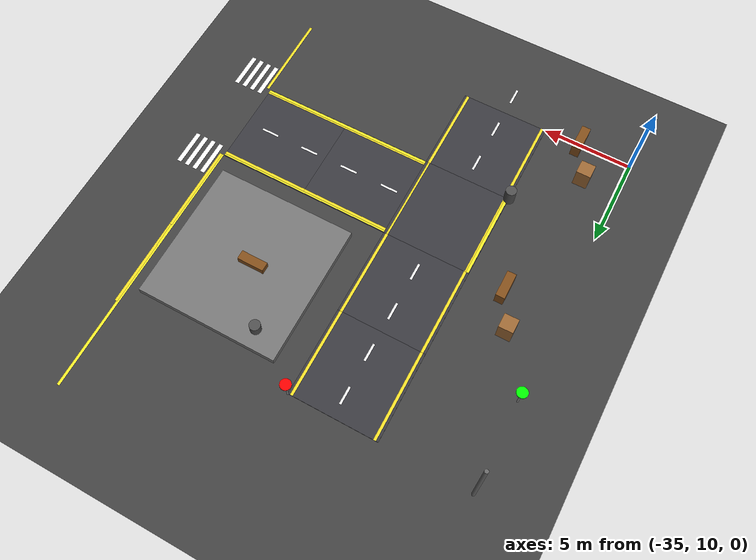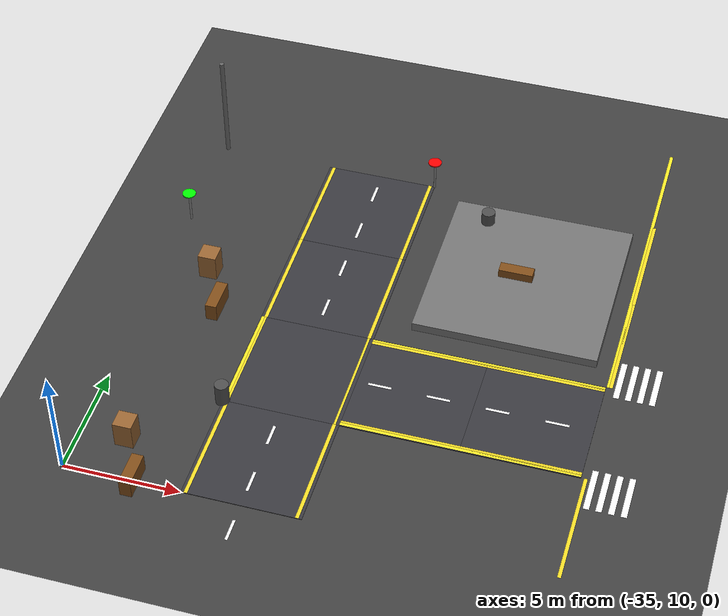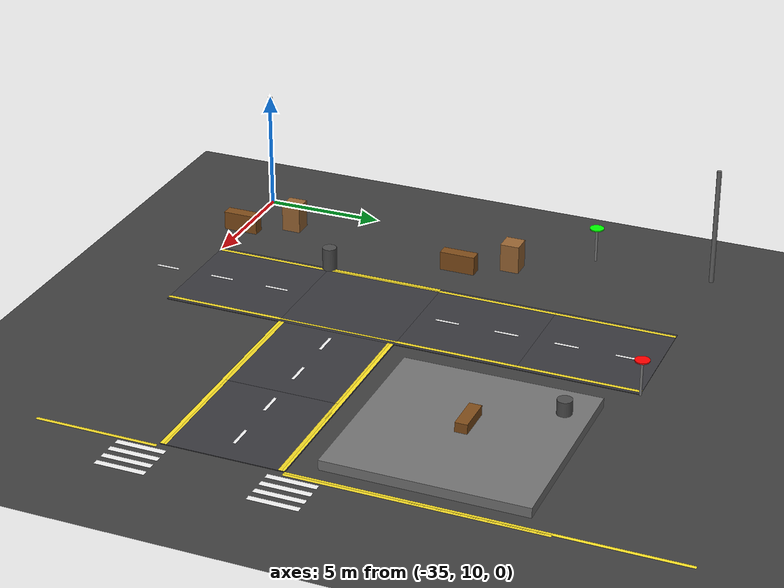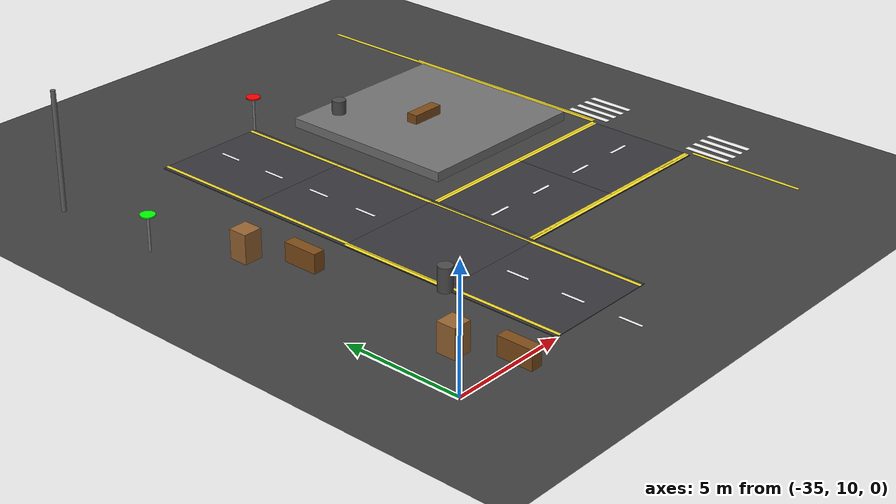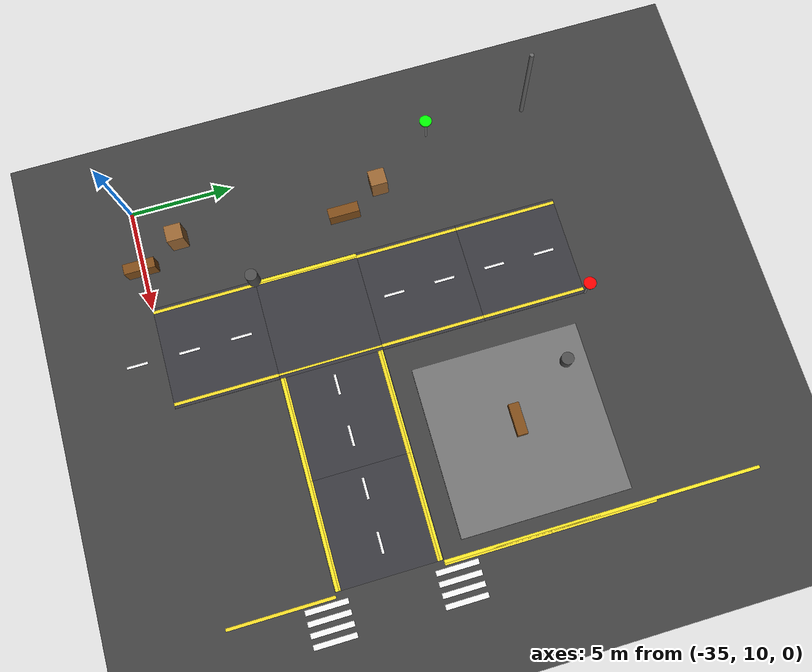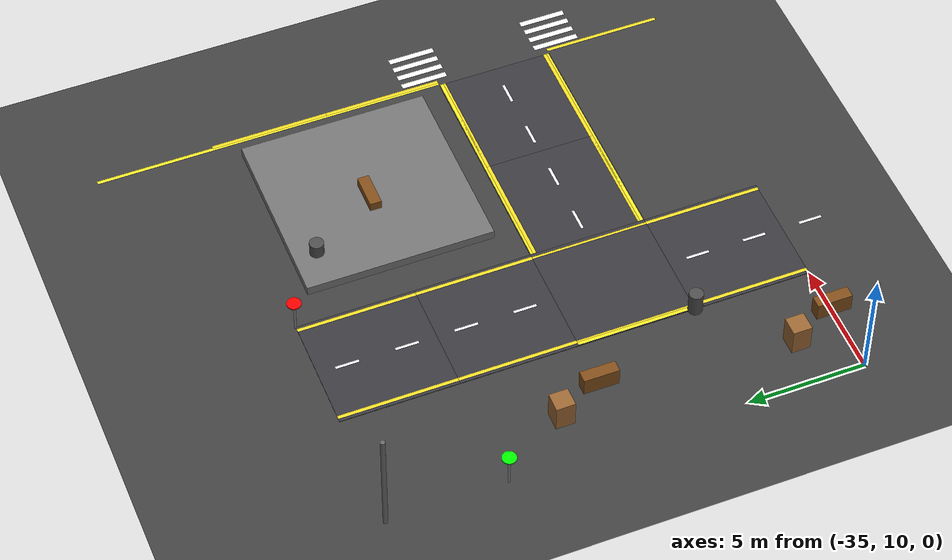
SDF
<sdf version="1.7">
 <world name="compact_city">
  <model name="ground_plane">
   <static>1</static>
   <pose>0 0 0.01 0 -0 0</pose>
   <link name="link">
    <collision name="collision">
     <geometry><plane><normal>0 0 1</normal><size>200 200</size></plane></geometry>
    </collision>
    <visual name="visual">
     <geometry><plane><normal>0 0 1</normal><size>200 200</size></plane></geometry>
     <material>
      <ambient>0.2 0.2 0.2 1</ambient>
      <diffuse>0.25 0.25 0.25 1</diffuse>
      <specular>0.1 0.1 0.1 1</specular>
     </material>
    </visual>
   </link>
  </model>
  <model name="road_tile_13">
   <static>1</static>
   <pose>-27.5 27.5 0.015 0 -0 1.5708</pose>
   <link name="link">
    <collision name="collision"><geometry><box><size>5 5 0.03</size></box></geometry></collision>
    <visual name="visual">
     <geometry><box><size>5 5 0.03</size></box></geometry>
     <material>
      <ambient>0.18 0.18 0.2 1</ambient>
      <diffuse>0.22 0.22 0.24 1</diffuse>
      <specular>0.1 0.1 0.1 1</specular>
     </material>
    </visual>
   </link>
  </model>
  <model name="road_tile_17">
   <static>1</static>
   <pose>-27.5 22.5 0.015 0 -0 1.5708</pose>
   <link name="link">
    <collision name="collision"><geometry><box><size>5 5 0.03</size></box></geometry></collision>
    <visual name="visual">
     <geometry><box><size>5 5 0.03</size></box></geometry>
     <material>
      <ambient>0.18 0.18 0.2 1</ambient>
      <diffuse>0.22 0.22 0.24 1</diffuse>
      <specular>0.1 0.1 0.1 1</specular>
     </material>
    </visual>
   </link>
  </model>
  <model name="road_tile_21">
   <static>1</static>
   <pose>-27.5 17.5 0.015 0 -0 0</pose>
   <link name="link">
    <collision name="collision"><geometry><box><size>5 5 0.03</size></box></geometry></collision>
    <visual name="visual">
     <geometry><box><size>5 5 0.03</size></box></geometry>
     <material>
      <ambient>0.18 0.18 0.2 1</ambient>
      <diffuse>0.22 0.22 0.24 1</diffuse>
      <specular>0.1 0.1 0.1 1</specular>
     </material>
    </visual>
   </link>
  </model>
  <model name="road_tile_22">
   <static>1</static>
   <pose>-22.5 17.5 0.015 0 -0 0</pose>
   <link name="link">
    <collision name="collision"><geometry><box><size>5 5 0.03</size></box></geometry></collision>
    <visual name="visual">
     <geometry><box><size>5 5 0.03</size></box></geometry>
     <material>
      <ambient>0.18 0.18 0.2 1</ambient>
      <diffuse>0.22 0.22 0.24 1</diffuse>
      <specular>0.1 0.1 0.1 1</specular>
     </material>
    </visual>
   </link>
  </model>
  <model name="road_tile_23">
   <static>1</static>
   <pose>-17.5 17.5 0.015 0 -0 0</pose>
   <link name="link">
    <collision name="collision"><geometry><box><size>5 5 0.03</size></box></geometry></collision>
    <visual name="visual">
     <geometry><box><size>5 5 0.03</size></box></geometry>
     <material>
      <ambient>0.18 0.18 0.2 1</ambient>
      <diffuse>0.22 0.22 0.24 1</diffuse>
      <specular>0.1 0.1 0.1 1</specular>
     </material>
    </visual>
   </link>
  </model>
  <model name="road_tile_33">
   <static>1</static>
   <pose>-27.5 12.5 0.015 0 -0 1.5708</pose>
   <link name="link">
    <collision name="collision"><geometry><box><size>5 5 0.03</size></box></geometry></collision>
    <visual name="visual">
     <geometry><box><size>5 5 0.03</size></box></geometry>
     <material>
      <ambient>0.18 0.18 0.2 1</ambient>
      <diffuse>0.22 0.22 0.24 1</diffuse>
      <specular>0.1 0.1 0.1 1</specular>
     </material>
    </visual>
   </link>
  </model>
  <model name="sidewalk_area_top_left">
   <static>1</static>
   <pose>-19.6112 25 0.2 0 -0 0</pose>
   <link name="link">
    <collision name="collision"><geometry><box><size>8 8 0.4</size></box></geometry></collision>
    <visual name="visual">
     <geometry><box><size>8 8 0.4</size></box></geometry>
     <material>
      <ambient>0.4 0.4 0.4 1</ambient>
      <diffuse>0.45 0.45 0.45 1</diffuse>
      <specular>0.2 0.2 0.2 1</specular>
     </material>
    </visual>
   </link>
  </model>
  <model name="el_141">
   <static>1</static>
   <pose>-29.8 12.5 0.038 0 -0 1.5708</pose>
   <link name="link">
    <visual name="v">
     <geometry><box><size>5 0.15 0.002</size></box></geometry>
     <material><ambient>0.9 0.8 0.1 1</ambient><diffuse>0.95 0.85 0.15 1</diffuse></material>
    </visual>
   </link>
  </model>
  <model name="el_142">
   <static>1</static>
   <pose>-25.2 12.5 0.038 0 -0 1.5708</pose>
   <link name="link">
    <visual name="v">
     <geometry><box><size>5 0.15 0.002</size></box></geometry>
     <material><ambient>0.9 0.8 0.1 1</ambient><diffuse>0.95 0.85 0.15 1</diffuse></material>
    </visual>
   </link>
  </model>
  <model name="el_143">
   <static>1</static>
   <pose>-29.8 22.5 0.038 0 -0 1.5708</pose>
   <link name="link">
    <visual name="v">
     <geometry><box><size>5 0.15 0.002</size></box></geometry>
     <material><ambient>0.9 0.8 0.1 1</ambient><diffuse>0.95 0.85 0.15 1</diffuse></material>
    </visual>
   </link>
  </model>
  <model name="el_144">
   <static>1</static>
   <pose>-25.2 22.5 0.038 0 -0 1.5708</pose>
   <link name="link">
    <visual name="v">
     <geometry><box><size>5 0.15 0.002</size></box></geometry>
     <material><ambient>0.9 0.8 0.1 1</ambient><diffuse>0.95 0.85 0.15 1</diffuse></material>
    </visual>
   </link>
  </model>
  <model name="el_145">
   <static>1</static>
   <pose>-29.8 27.5 0.038 0 -0 1.5708</pose>
   <link name="link">
    <visual name="v">
     <geometry><box><size>5 0.15 0.002</size></box></geometry>
     <material><ambient>0.9 0.8 0.1 1</ambient><diffuse>0.95 0.85 0.15 1</diffuse></material>
    </visual>
   </link>
  </model>
  <model name="el_146">
   <static>1</static>
   <pose>-25.2 27.5 0.038 0 -0 1.5708</pose>
   <link name="link">
    <visual name="v">
     <geometry><box><size>5 0.15 0.002</size></box></geometry>
     <material><ambient>0.9 0.8 0.1 1</ambient><diffuse>0.95 0.85 0.15 1</diffuse></material>
    </visual>
   </link>
  </model>
  <model name="el_151">
   <static>1</static>
   <pose>-22.5 15.2 0.038 0 -0 0</pose>
   <link name="link">
    <visual name="v">
     <geometry><box><size>5 0.15 0.002</size></box></geometry>
     <material><ambient>0.9 0.8 0.1 1</ambient><diffuse>0.95 0.85 0.15 1</diffuse></material>
    </visual>
   </link>
  </model>
  <model name="el_152">
   <static>1</static>
   <pose>-22.5 19.8 0.038 0 -0 0</pose>
   <link name="link">
    <visual name="v">
     <geometry><box><size>5 0.15 0.002</size></box></geometry>
     <material><ambient>0.9 0.8 0.1 1</ambient><diffuse>0.95 0.85 0.15 1</diffuse></material>
    </visual>
   </link>
  </model>
  <model name="el_159">
   <static>1</static>
   <pose>-17.5 15.2 0.038 0 -0 0</pose>
   <link name="link">
    <visual name="v">
     <geometry><box><size>5 0.15 0.002</size></box></geometry>
     <material><ambient>0.9 0.8 0.1 1</ambient><diffuse>0.95 0.85 0.15 1</diffuse></material>
    </visual>
   </link>
  </model>
  <model name="el_160">
   <static>1</static>
   <pose>-17.5 19.8 0.038 0 -0 0</pose>
   <link name="link">
    <visual name="v">
     <geometry><box><size>5 0.15 0.002</size></box></geometry>
     <material><ambient>0.9 0.8 0.1 1</ambient><diffuse>0.95 0.85 0.15 1</diffuse></material>
    </visual>
   </link>
  </model>
  <model name="el_173">
   <static>1</static>
   <pose>-14.8 12.5 0.038 0 -0 1.5708</pose>
   <link name="link">
    <visual name="v">
     <geometry><box><size>5 0.15 0.002</size></box></geometry>
     <material><ambient>0.9 0.8 0.1 1</ambient><diffuse>0.95 0.85 0.15 1</diffuse></material>
    </visual>
   </link>
  </model>
  <model name="el_175">
   <static>1</static>
   <pose>-14.8 22.5 0.038 0 -0 1.5708</pose>
   <link name="link">
    <visual name="v">
     <geometry><box><size>5 0.15 0.002</size></box></geometry>
     <material><ambient>0.9 0.8 0.1 1</ambient><diffuse>0.95 0.85 0.15 1</diffuse></material>
    </visual>
   </link>
  </model>
  <model name="el_177">
   <static>1</static>
   <pose>-14.8 27.5 0.038 0 -0 1.5708</pose>
   <link name="link">
    <visual name="v">
     <geometry><box><size>5 0.15 0.002</size></box></geometry>
     <material><ambient>0.9 0.8 0.1 1</ambient><diffuse>0.95 0.85 0.15 1</diffuse></material>
    </visual>
   </link>
  </model>
  <model name="ld_10">
   <static>1</static>
   <pose>-27.5000 8.7500 0.038 0 -0 1.5708</pose>
   <link name="link">
    <visual name="v">
     <geometry><box><size>1 0.12 0.002</size></box></geometry>
     <material><ambient>1 1 1 1</ambient><diffuse>0.95 0.95 0.95 1</diffuse></material>
    </visual>
   </link>
  </model>
  <model name="ld_11">
   <static>1</static>
   <pose>-27.5000 11.2500 0.038 0 -0 1.5708</pose>
   <link name="link">
    <visual name="v">
     <geometry><box><size>1 0.12 0.002</size></box></geometry>
     <material><ambient>1 1 1 1</ambient><diffuse>0.95 0.95 0.95 1</diffuse></material>
    </visual>
   </link>
  </model>
  <model name="ld_12">
   <static>1</static>
   <pose>-27.5000 13.7500 0.038 0 -0 1.5708</pose>
   <link name="link">
    <visual name="v">
     <geometry><box><size>1 0.12 0.002</size></box></geometry>
     <material><ambient>1 1 1 1</ambient><diffuse>0.95 0.95 0.95 1</diffuse></material>
    </visual>
   </link>
  </model>
  <model name="ld_13">
   <static>1</static>
   <pose>-27.5000 21.2500 0.038 0 -0 1.5708</pose>
   <link name="link">
    <visual name="v">
     <geometry><box><size>1 0.12 0.002</size></box></geometry>
     <material><ambient>1 1 1 1</ambient><diffuse>0.95 0.95 0.95 1</diffuse></material>
    </visual>
   </link>
  </model>
  <model name="ld_14">
   <static>1</static>
   <pose>-27.5000 23.7500 0.038 0 -0 1.5708</pose>
   <link name="link">
    <visual name="v">
     <geometry><box><size>1 0.12 0.002</size></box></geometry>
     <material><ambient>1 1 1 1</ambient><diffuse>0.95 0.95 0.95 1</diffuse></material>
    </visual>
   </link>
  </model>
  <model name="ld_15">
   <static>1</static>
   <pose>-27.5000 26.2500 0.038 0 -0 1.5708</pose>
   <link name="link">
    <visual name="v">
     <geometry><box><size>1 0.12 0.002</size></box></geometry>
     <material><ambient>1 1 1 1</ambient><diffuse>0.95 0.95 0.95 1</diffuse></material>
    </visual>
   </link>
  </model>
  <model name="ld_16">
   <static>1</static>
   <pose>-27.5000 28.7500 0.038 0 -0 1.5708</pose>
   <link name="link">
    <visual name="v">
     <geometry><box><size>1 0.12 0.002</size></box></geometry>
     <material><ambient>1 1 1 1</ambient><diffuse>0.95 0.95 0.95 1</diffuse></material>
    </visual>
   </link>
  </model>
  <model name="ld_85">
   <static>1</static>
   <pose>-24.0000 17.5000 0.038 0 0 0</pose>
   <link name="link">
    <visual name="v">
     <geometry><box><size>1 0.12 0.002</size></box></geometry>
     <material><ambient>1 1 1 1</ambient><diffuse>0.95 0.95 0.95 1</diffuse></material>
    </visual>
   </link>
  </model>
  <model name="ld_86">
   <static>1</static>
   <pose>-21.5000 17.5000 0.038 0 0 0</pose>
   <link name="link">
    <visual name="v">
     <geometry><box><size>1 0.12 0.002</size></box></geometry>
     <material><ambient>1 1 1 1</ambient><diffuse>0.95 0.95 0.95 1</diffuse></material>
    </visual>
   </link>
  </model>
  <model name="ld_87">
   <static>1</static>
   <pose>-19.0000 17.5000 0.038 0 0 0</pose>
   <link name="link">
    <visual name="v">
     <geometry><box><size>1 0.12 0.002</size></box></geometry>
     <material><ambient>1 1 1 1</ambient><diffuse>0.95 0.95 0.95 1</diffuse></material>
    </visual>
   </link>
  </model>
  <model name="ld_88">
   <static>1</static>
   <pose>-16.5000 17.5000 0.038 0 0 0</pose>
   <link name="link">
    <visual name="v">
     <geometry><box><size>1 0.12 0.002</size></box></geometry>
     <material><ambient>1 1 1 1</ambient><diffuse>0.95 0.95 0.95 1</diffuse></material>
    </visual>
   </link>
  </model>
  <model name="ie_274">
   <static>1</static>
   <pose>-29.8 17.5 0.038 0 -0 1.5708</pose>
   <link name="link">
    <visual name="v">
     <geometry><box><size>5 0.1 0.002</size></box></geometry>
     <material><ambient>0.9 0.8 0.1 1</ambient><diffuse>0.95 0.85 0.15 1</diffuse></material>
    </visual>
   </link>
  </model>
  <model name="ie_275">
   <static>1</static>
   <pose>-25.2 17.5 0.038 0 -0 1.5708</pose>
   <link name="link">
    <visual name="v">
     <geometry><box><size>5 0.1 0.002</size></box></geometry>
     <material><ambient>0.9 0.8 0.1 1</ambient><diffuse>0.95 0.85 0.15 1</diffuse></material>
    </visual>
   </link>
  </model>
  <model name="traffic_sign_1">
   <static>1</static>
   <pose>-25 30 1.5 0 -0 0</pose>
   <link name="link">
    <collision name="collision">
     <geometry><cylinder><radius>0.3</radius><length>0.05</length></cylinder></geometry>
    </collision>
    <visual name="visual">
     <geometry><cylinder><radius>0.3</radius><length>0.05</length></cylinder></geometry>
     <material><ambient>1 0 0 1</ambient><diffuse>1 0 0 1</diffuse></material>
    </visual>
    <collision name="pole_col">
     <pose>0 0 -0.75 0 -0 0</pose>
     <geometry><cylinder><radius>0.05</radius><length>1.5</length></cylinder></geometry>
    </collision>
    <visual name="pole">
     <pose>0 0 -0.75 0 -0 0</pose>
     <geometry><cylinder><radius>0.05</radius><length>1.5</length></cylinder></geometry>
     <material><ambient>0.5 0.5 0.5 1</ambient><diffuse>0.5 0.5 0.5 1</diffuse></material>
    </visual>
   </link>
  </model>
  <model name="bench_1">
   <static>1</static>
   <pose>-20 25 0.4 0 -0 0</pose>
   <link name="link">
    <collision name="collision"><geometry><box><size>1.5 0.5 0.8</size></box></geometry></collision>
    <visual name="visual">
     <geometry><box><size>1.5 0.5 0.8</size></box></geometry>
     <material><ambient>0.5 0.3 0.1 1</ambient><diffuse>0.5 0.3 0.1 1</diffuse></material>
    </visual>
   </link>
  </model>
  <model name="bin_1">
   <static>1</static>
   <pose>-22 28 0.5 0 -0 0</pose>
   <link name="link">
    <collision name="collision">
     <geometry><cylinder><radius>0.3</radius><length>1</length></cylinder></geometry>
    </collision>
    <visual name="visual">
     <geometry><cylinder><radius>0.3</radius><length>1</length></cylinder></geometry>
     <material><ambient>0.2 0.2 0.2 1</ambient><diffuse>0.3 0.3 0.3 1</diffuse></material>
    </visual>
   </link>
  </model>
  <model name="bench_4">
   <static>1</static>
   <pose>-32 20 0.4 0 -0 1.57</pose>
   <link name="link">
    <collision name="collision"><geometry><box><size>1.5 0.5 0.8</size></box></geometry></collision>
    <visual name="visual">
     <geometry><box><size>1.5 0.5 0.8</size></box></geometry>
     <material><ambient>0.5 0.3 0.1 1</ambient><diffuse>0.5 0.3 0.1 1</diffuse></material>
    </visual>
   </link>
  </model>
  <model name="bench_5">
   <static>1</static>
   <pose>-32 10 0.4 0 -0 1.57</pose>
   <link name="link">
    <collision name="collision"><geometry><box><size>1.5 0.5 0.8</size></box></geometry></collision>
    <visual name="visual">
     <geometry><box><size>1.5 0.5 0.8</size></box></geometry>
     <material><ambient>0.5 0.3 0.1 1</ambient><diffuse>0.5 0.3 0.1 1</diffuse></material>
    </visual>
   </link>
  </model>
  <model name="bin_5">
   <static>1</static>
   <pose>-30 15 0.5 0 -0 0</pose>
   <link name="link">
    <collision name="collision">
     <geometry><cylinder><radius>0.3</radius><length>1</length></cylinder></geometry>
    </collision>
    <visual name="visual">
     <geometry><cylinder><radius>0.3</radius><length>1</length></cylinder></geometry>
     <material><ambient>0.2 0.2 0.2 1</ambient><diffuse>0.3 0.3 0.3 1</diffuse></material>
    </visual>
   </link>
  </model>
  <model name="sign_5">
   <static>1</static>
   <pose>-35 25 1.5 0 -0 1.57</pose>
   <link name="link">
    <collision name="collision">
     <geometry><cylinder><radius>0.3</radius><length>0.05</length></cylinder></geometry>
    </collision>
    <visual name="visual">
     <geometry><cylinder><radius>0.3</radius><length>0.05</length></cylinder></geometry>
     <material><ambient>0 1 0 1</ambient><diffuse>0 1 0 1</diffuse></material>
    </visual>
    <collision name="pole_col">
     <pose>0 0 -0.75 0 -0 0</pose>
     <geometry><cylinder><radius>0.05</radius><length>1.5</length></cylinder></geometry>
    </collision>
    <visual name="pole">
     <pose>0 0 -0.75 0 -0 0</pose>
     <geometry><cylinder><radius>0.05</radius><length>1.5</length></cylinder></geometry>
     <material><ambient>0.5 0.5 0.5 1</ambient><diffuse>0.5 0.5 0.5 1</diffuse></material>
    </visual>
   </link>
  </model>
  <model name="pole_5">
   <static>1</static>
   <pose>-35 30 2.5 0 -0 0</pose>
   <link name="link">
    <collision name="collision">
     <geometry><cylinder><radius>0.1</radius><length>5</length></cylinder></geometry>
    </collision>
    <visual name="visual">
     <geometry><cylinder><radius>0.1</radius><length>5</length></cylinder></geometry>
     <material><ambient>0.3 0.3 0.3 1</ambient><diffuse>0.4 0.4 0.4 1</diffuse></material>
    </visual>
   </link>
  </model>
  <model name="pole_6">
   <static>1</static>
   <pose>-35 10 2.5 0 -0 0</pose>
   <link name="link">
    <collision name="collision">
     <geometry><cylinder><radius>0.1</radius><length>5</length></cylinder></geometry>
    </collision>
    <visual name="visual">
     <geometry><cylinder><radius>0.1</radius><length>5</length></cylinder></geometry>
     <material><ambient>0.3 0.3 0.3 1</ambient><diffuse>0.4 0.4 0.4 1</diffuse></material>
    </visual>
   </link>
  </model>
  <model name="box_1">
   <static>1</static>
   <pose>-33 22 0.6 0 -0 0</pose>
   <link name="link">
    <collision name="collision"><geometry><box><size>0.8 0.8 1.2</size></box></geometry></collision>
    <visual name="visual">
     <geometry><box><size>0.8 0.8 1.2</size></box></geometry>
     <material><ambient>0.6 0.4 0.2 1</ambient><diffuse>0.6 0.4 0.2 1</diffuse></material>
    </visual>
   </link>
  </model>
  <model name="box_2">
   <static>1</static>
   <pose>-33 12 0.6 0 -0 0</pose>
   <link name="link">
    <collision name="collision"><geometry><box><size>0.8 0.8 1.2</size></box></geometry></collision>
    <visual name="visual">
     <geometry><box><size>0.8 0.8 1.2</size></box></geometry>
     <material><ambient>0.6 0.4 0.2 1</ambient><diffuse>0.6 0.4 0.2 1</diffuse></material>
    </visual>
   </link>
  </model>
  <model name="edge_h_7">
   <static>1</static>
   <pose>-20 15.1 0.038 0 -0 0</pose>
   <link name="link">
    <visual name="visual">
     <geometry><box><size>10 0.15 0.002</size></box></geometry>
     <material><ambient>0.95 0.85 0.1 1</ambient><diffuse>1 0.9 0.15 1</diffuse></material>
    </visual>
   </link>
  </model>
  <model name="edge_h_8">
   <static>1</static>
   <pose>-20 19.9 0.038 0 -0 0</pose>
   <link name="link">
    <visual name="visual">
     <geometry><box><size>10 0.15 0.002</size></box></geometry>
     <material><ambient>0.95 0.85 0.1 1</ambient><diffuse>1 0.9 0.15 1</diffuse></material>
    </visual>
   </link>
  </model>
  <model name="edge_v_33">
   <static>1</static>
   <pose>-14.9 27.5 0.038 0 -0 1.5708</pose>
   <link name="link">
    <visual name="visual">
     <geometry><box><size>15 0.15 0.002</size></box></geometry>
     <material><ambient>0.95 0.85 0.1 1</ambient><diffuse>1 0.9 0.15 1</diffuse></material>
    </visual>
   </link>
  </model>
  <model name="tedge_493">
   <static>1</static>
   <pose>-29.9 17.5 0.038 0 -0 1.5708</pose>
   <link name="link">
    <visual name="visual">
     <geometry><box><size>5 0.15 0.002</size></box></geometry>
     <material><ambient>0.95 0.85 0.1 1</ambient><diffuse>1 0.9 0.15 1</diffuse></material>
    </visual>
   </link>
  </model>
  <model name="xwalk_573">
   <static>1</static>
   <pose>-14.5 20.5 0.038 0 -0 1.5708</pose>
   <link name="link">
    <visual name="visual">
     <geometry><box><size>2 0.25 0.002</size></box></geometry>
     <material><ambient>1 1 1 1</ambient><diffuse>0.95 0.95 0.95 1</diffuse></material>
    </visual>
   </link>
  </model>
  <model name="xwalk_574">
   <static>1</static>
   <pose>-14 20.5 0.038 0 -0 1.5708</pose>
   <link name="link">
    <visual name="visual">
     <geometry><box><size>2 0.25 0.002</size></box></geometry>
     <material><ambient>1 1 1 1</ambient><diffuse>0.95 0.95 0.95 1</diffuse></material>
    </visual>
   </link>
  </model>
  <model name="xwalk_575">
   <static>1</static>
   <pose>-13.5 20.5 0.038 0 -0 1.5708</pose>
   <link name="link">
    <visual name="visual">
     <geometry><box><size>2 0.25 0.002</size></box></geometry>
     <material><ambient>1 1 1 1</ambient><diffuse>0.95 0.95 0.95 1</diffuse></material>
    </visual>
   </link>
  </model>
  <model name="xwalk_576">
   <static>1</static>
   <pose>-13 20.5 0.038 0 -0 1.5708</pose>
   <link name="link">
    <visual name="visual">
     <geometry><box><size>2 0.25 0.002</size></box></geometry>
     <material><ambient>1 1 1 1</ambient><diffuse>0.95 0.95 0.95 1</diffuse></material>
    </visual>
   </link>
  </model>
  <model name="xwalk_582">
   <static>1</static>
   <pose>-14.5 14.5 0.038 0 -0 1.5708</pose>
   <link name="link">
    <visual name="visual">
     <geometry><box><size>2 0.25 0.002</size></box></geometry>
     <material><ambient>1 1 1 1</ambient><diffuse>0.95 0.95 0.95 1</diffuse></material>
    </visual>
   </link>
  </model>
  <model name="xwalk_583">
   <static>1</static>
   <pose>-14 14.5 0.038 0 -0 1.5708</pose>
   <link name="link">
    <visual name="visual">
     <geometry><box><size>2 0.25 0.002</size></box></geometry>
     <material><ambient>1 1 1 1</ambient><diffuse>0.95 0.95 0.95 1</diffuse></material>
    </visual>
   </link>
  </model>
  <model name="xwalk_584">
   <static>1</static>
   <pose>-13.5 14.5 0.038 0 -0 1.5708</pose>
   <link name="link">
    <visual name="visual">
     <geometry><box><size>2 0.25 0.002</size></box></geometry>
     <material><ambient>1 1 1 1</ambient><diffuse>0.95 0.95 0.95 1</diffuse></material>
    </visual>
   </link>
  </model>
  <model name="xwalk_585">
   <static>1</static>
   <pose>-13 14.5 0.038 0 -0 1.5708</pose>
   <link name="link">
    <visual name="visual">
     <geometry><box><size>2 0.25 0.002</size></box></geometry>
     <material><ambient>1 1 1 1</ambient><diffuse>0.95 0.95 0.95 1</diffuse></material>
    </visual>
   </link>
  </model>
 </world>
</sdf>
